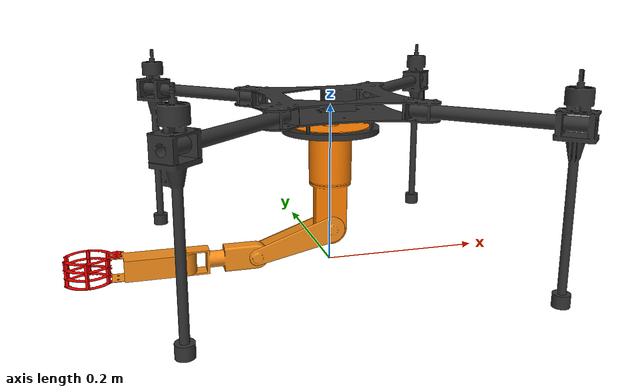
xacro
<?xml version="1.0"?>
<robot name="uav_arm_v4" xmlns:xacro="http://www.ros.org/wiki/xacro">

  <xacro:property name="mesh_path" value="package://uav_arm_model/meshes" />

  <xacro:macro name="inertial_matrix" params="mass ixx ixy ixz iyy iyz izz pose">
    <inertial>
      <origin xyz="${pose}" rpy="0 0 0"/>
      <mass value="${mass}"/>
      <inertia ixx="${ixx}" ixy="${ixy}" ixz="${ixz}" iyy="${iyy}" iyz="${iyz}" izz="${izz}"/>
    </inertial>
  </xacro:macro>

  <xacro:macro name="effort_transmission" params="joint_name">
    <transmission name="${joint_name}_trans">
      <type>transmission_interface/SimpleTransmission</type>
      <joint name="${joint_name}">
        <hardwareInterface>hardware_interface/EffortJointInterface</hardwareInterface>
      </joint>
      <actuator name="${joint_name}_motor">
        <hardwareInterface>hardware_interface/EffortJointInterface</hardwareInterface>
        <mechanicalReduction>1</mechanicalReduction>
      </actuator>
    </transmission>
  </xacro:macro>

  <link name="base_link">
    <xacro:inertial_matrix mass="0.844401"
      ixx="0.0228437" ixy="0" ixz="4.86e-06"
      iyy="0.0228546" iyz="0" izz="0.0413503"
      pose="0.000642 0 0.193246"/>
    <visual>
      <origin xyz="0 0 0" rpy="0 0 0"/>
      <geometry>
        <mesh filename="${mesh_path}/base_link.STL" scale="1 1 1"/>
      </geometry>
      <material name="dark_grey">
        <color rgba="0.2 0.2 0.2 1"/>
      </material>
    </visual>
    <collision>
      <origin xyz="0 0 0" rpy="0 0 0"/>
      <geometry>
        <mesh filename="${mesh_path}/base_link.STL" scale="1 1 1"/>
      </geometry>
    </collision>
  </link>

  <link name="imu_link">
    <inertial>
      <mass value="0.015"/>
      <inertia ixx="1e-05" ixy="0" ixz="0" iyy="1e-05" iyz="0" izz="1e-05"/>
    </inertial>
  </link>
  <joint name="imu_joint" type="fixed">
    <parent link="base_link"/>
    <child link="imu_link"/>
    <origin xyz="0 0 0" rpy="0 0 0"/>
  </joint>

  <link name="arm_link1">
    <xacro:inertial_matrix mass="0.250494"
      ixx="0.005" ixy="0" ixz="0"
      iyy="0.005" iyz="0" izz="0.005"
      pose="0 0 0.043715"/>
    <visual>
      <geometry><mesh filename="${mesh_path}/arm_link1.STL"/></geometry>
      <material name="orange"><color rgba="1 0.5 0 1"/></material>
    </visual>
    <collision>
      <geometry><mesh filename="${mesh_path}/arm_link1.STL"/></geometry>
    </collision>
  </link>

  <joint name="arm_joint1" type="revolute">
    <parent link="base_link"/>
    <child link="arm_link1"/>
    <origin xyz="0 0 0.1745" rpy="3.14159 0 3.14159"/>
    <axis xyz="0 0 1"/>
    <limit lower="-3.14" upper="3.14" effort="5.0" velocity="3.0"/>
    <dynamics damping="0.05" friction="0.0"/>
  </joint>

  <link name="arm_link2">
    <xacro:inertial_matrix mass="0.020149"
      ixx="0.005" ixy="0" ixz="0"
      iyy="0.005" iyz="0" izz="0.005"
      pose="0.04063 0.011621 0"/>
    <visual>
      <geometry><mesh filename="${mesh_path}/arm_link2.STL"/></geometry>
    </visual>
    <collision>
      <geometry><mesh filename="${mesh_path}/arm_link2.STL"/></geometry>
    </collision>
  </link>

  <joint name="arm_joint2" type="revolute">
    <parent link="arm_link1"/>
    <child link="arm_link2"/>
    <origin xyz="0 0 0.132" rpy="1.5708 0 0"/>
    <axis xyz="0 0 1"/>
    <limit lower="-3.14" upper="3.14" effort="5.0" velocity="3.0"/>
    <dynamics damping="0.05" friction="0.0"/>
  </joint>

  <link name="arm_link3">
    <xacro:inertial_matrix mass="0.0397105"
      ixx="0.003" ixy="0" ixz="0"
      iyy="0.003" iyz="0" izz="0.003"
      pose="0.025422 -0.007271 0"/>
    <visual>
      <geometry><mesh filename="${mesh_path}/arm_link3.STL"/></geometry>
    </visual>
    <collision>
      <geometry><mesh filename="${mesh_path}/arm_link3.STL"/></geometry>
    </collision>
  </link>

  <joint name="arm_joint3" type="revolute">
    <parent link="arm_link2"/>
    <child link="arm_link3"/>
    <origin xyz="0.09614 0.0275 0" rpy="0 0 0.27859"/>
    <axis xyz="0 0 1"/>
    <limit lower="-3.14" upper="3.14" effort="5.0" velocity="3.0"/>
    <dynamics damping="0.05" friction="0.0"/>
  </joint>

  <link name="arm_link4">
    <xacro:inertial_matrix mass="0.0631624"
      ixx="0.003" ixy="0" ixz="0"
      iyy="0.003" iyz="0" izz="0.003"
      pose="0.030336 6.3e-05 -5.3e-05"/>
    <visual>
      <geometry><mesh filename="${mesh_path}/arm_link4.STL"/></geometry>
    </visual>
    <collision>
      <geometry><mesh filename="${mesh_path}/arm_link4.STL"/></geometry>
    </collision>
  </link>

  <joint name="arm_joint4" type="revolute">
    <parent link="arm_link3"/>
    <child link="arm_link4"/>
    <origin xyz="0.08509 -0.02434 0" rpy="-1.5708 0 -0.27859"/>
    <axis xyz="0 0 1"/>
    <limit lower="-3.14" upper="3.14" effort="5.0" velocity="3.0"/>
    <dynamics damping="0.05" friction="0.0"/>
  </joint>

  <link name="left_gripper_link">
    <xacro:inertial_matrix mass="0.00824355"
      ixx="0.001" ixy="0" ixz="0"
      iyy="0.001" iyz="0" izz="0.001"
      pose="0.032507 0.009008 -0.01525"/>
    <visual>
      <geometry><mesh filename="${mesh_path}/left_gripper_link.STL"/></geometry>
      <material name="red"><color rgba="1 0 0 1"/></material>
    </visual>
    <collision>
      <geometry><mesh filename="${mesh_path}/left_gripper_link.STL"/></geometry>
    </collision>
  </link>

  <joint name="left_gripper_joint" type="revolute">
    <parent link="arm_link4"/>
    <child link="left_gripper_link"/>
    <origin xyz="0.07775 -0.00581 -0.0175" rpy="3.14159 0 0"/>
    <axis xyz="0 0 1"/>
    <limit lower="0.0" upper="0.6" effort="5.0" velocity="1.0"/>
    <dynamics damping="0.7" friction="0.1"/>
  </joint>

  <link name="right_gripper_link">
    <xacro:inertial_matrix mass="0.0079394"
      ixx="0.001" ixy="0" ixz="0"
      iyy="0.001" iyz="0" izz="0.001"
      pose="0.032835 -0.008766 -0.015125"/>
    <visual>
      <geometry><mesh filename="${mesh_path}/right_gripper_link.STL"/></geometry>
      <material name="red"/>
    </visual>
    <collision>
      <geometry><mesh filename="${mesh_path}/right_gripper_link.STL"/></geometry>
    </collision>
  </link>

  <joint name="right_gripper_joint" type="revolute">
    <parent link="arm_link4"/>
    <child link="right_gripper_link"/>
    <origin xyz="0.07775 0.00594 -0.01738" rpy="3.14159 0 0"/>
    <axis xyz="0 0 1"/>
    <limit lower="0.0" upper="0.6" effort="5.0" velocity="1.0"/>
    <dynamics damping="0.7" friction="0.1"/>
    <mimic joint="left_gripper_joint" multiplier="-1" offset="0"/>
  </joint>

  <xacro:effort_transmission joint_name="arm_joint1"/>
  <xacro:effort_transmission joint_name="arm_joint2"/>
  <xacro:effort_transmission joint_name="arm_joint3"/>
  <xacro:effort_transmission joint_name="arm_joint4"/>
  <xacro:effort_transmission joint_name="left_gripper_joint"/>

  <gazebo>
    <plugin name="ros_control" filename="libgazebo_ros_control.so">
      <robotNamespace>/uav_arm</robotNamespace>
      <robotParam>/robot_description</robotParam>
      <controlPeriod>0.004</controlPeriod>
    </plugin>
  </gazebo>

  <gazebo reference="arm_link1"><material>Gazebo/Orange</material></gazebo>
  <gazebo reference="arm_link2"><material>Gazebo/Orange</material></gazebo>
  <gazebo reference="arm_link3"><material>Gazebo/Orange</material></gazebo>
  <gazebo reference="arm_link4"><material>Gazebo/Orange</material></gazebo>
  <gazebo reference="left_gripper_link"><material>Gazebo/RedBright</material></gazebo>
  <gazebo reference="right_gripper_link"><material>Gazebo/RedBright</material></gazebo>

</robot>
